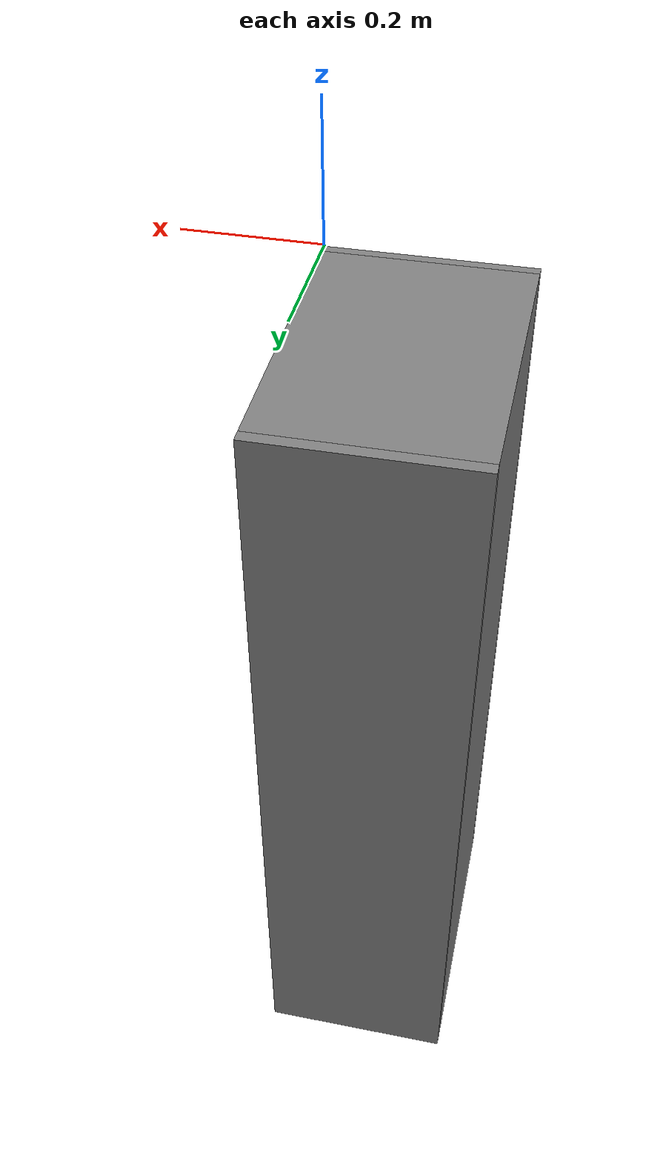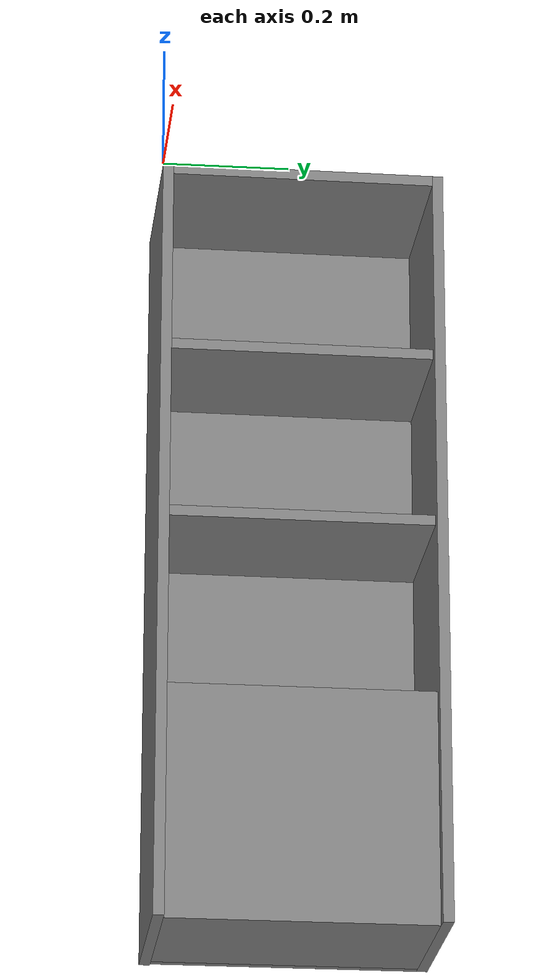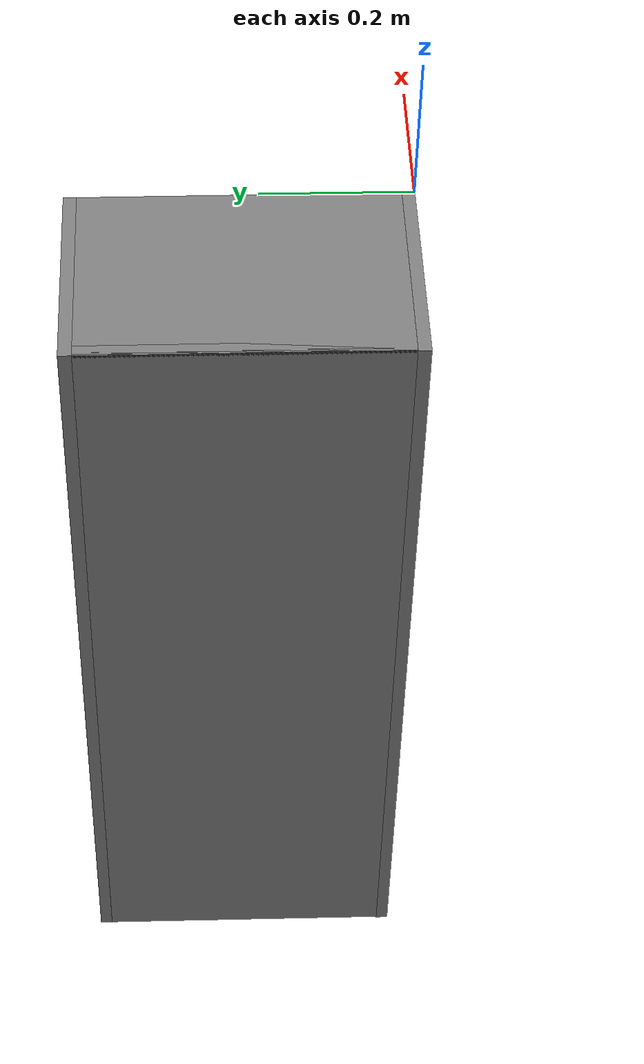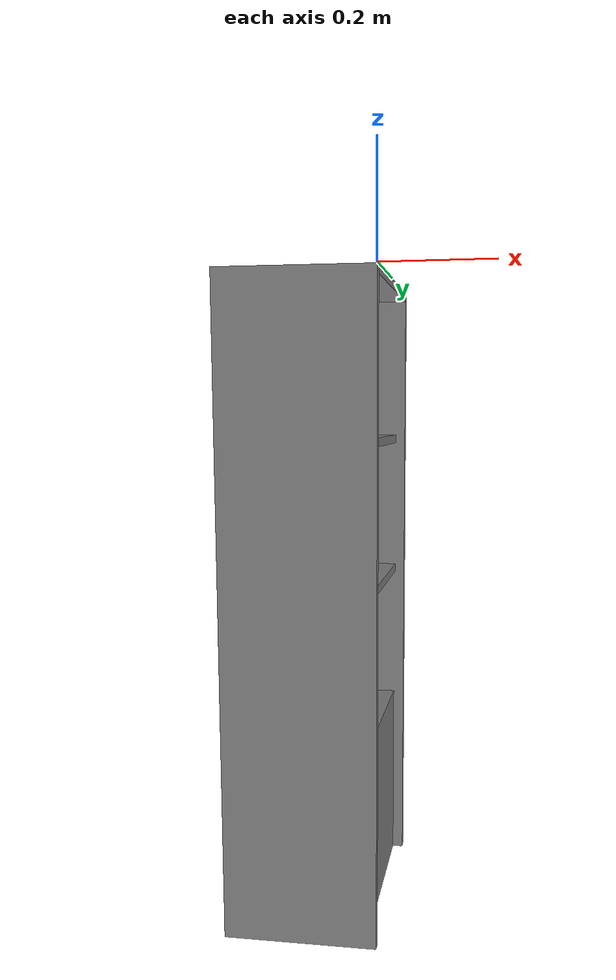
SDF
<?xml version="1.0" ?>
<sdf version="1.4">
    <model name='tvboard'>
      <link name='link'>
        <inertial>
          <mass>50</mass>
          <inertia>
            <ixx>1</ixx>
            <ixy>0</ixy>
            <ixz>0</ixz>
            <iyy>1</iyy>
            <iyz>0</iyz>
            <izz>1</izz>
          </inertia>
        </inertial>
        <visual name='left_board'>
          <pose>-0.145 0.0085 -0.6175 0 0 0</pose>
          <geometry>
            <box>
              <size>0.29 0.017 1.2315</size>
            </box>
          </geometry>
          <material>
            <!-- base_materials/wood -->
            <name>wood</name>
            <ambient>1 1 1 1</ambient>
            <diffuse>0.5 0.5 0.5 1.0</diffuse>
            <specular>0 0 0 1.0</specular>
            <shininess>12.5</shininess>
            <pbr>
              <metal>
                <albedo_map>model://base_materials/wood/textures/light_wood.png</albedo_map>
                <max_anisotropy>16</max_anisotropy>
                <metalness>0</metalness>
              </metal>
            </pbr>
          </material>
        </visual>
        <collision name='collision_left_board'>
          <pose>-0.145 0.0085 -0.6175 0 0 0</pose>
          <geometry>
            <box>
              <size>0.29 0.017 1.2315</size>
            </box>
          </geometry>
          <max_contacts>10</max_contacts>
          <surface>
            <bounce/>
            <friction>
              <ode/>
            </friction>
            <contact>
              <ode/>
            </contact>
          </surface>
        </collision>
        <visual name='right_board'>
          <pose>-0.145 0.4405 -0.61575 0 0 0</pose>
          <geometry>
            <box>
              <size>0.29 0.017 1.2315</size>
            </box>
          </geometry>
          <material>
            <!-- base_materials/wood -->
            <name>wood</name>
            <ambient>1 1 1 1</ambient>
            <diffuse>0.5 0.5 0.5 1.0</diffuse>
            <specular>0 0 0 1.0</specular>
            <shininess>12.5</shininess>
            <pbr>
              <metal>
                <albedo_map>model://base_materials/wood/textures/light_wood.png</albedo_map>
                <max_anisotropy>16</max_anisotropy>
                <metalness>0</metalness>
              </metal>
            </pbr>
          </material>
        </visual>
        <collision name='collision_right_board'>
          <pose>-0.145 0.4405 -0.61575 0 0 0</pose>
          <geometry>
            <box>
              <size>0.29 0.017 1.2315</size>
            </box>
          </geometry>
          <max_contacts>10</max_contacts>
          <surface>
            <bounce/>
            <friction>
              <ode/>
            </friction>
            <contact>
              <ode/>
            </contact>
          </surface>
        </collision>
        <visual name='top_board'>
          <pose>-0.145 0.2245 -0.0085 0 0 0</pose>
          <geometry>
            <box>
              <size>0.29 0.415 0.017</size>
            </box>
          </geometry>
          <material>
            <!-- base_materials/wood -->
            <name>wood</name>
            <ambient>1 1 1 1</ambient>
            <diffuse>0.5 0.5 0.5 1.0</diffuse>
            <specular>0 0 0 1.0</specular>
            <shininess>12.5</shininess>
            <pbr>
              <metal>
                <albedo_map>model://base_materials/wood/textures/light_wood.png</albedo_map>
                <max_anisotropy>16</max_anisotropy>
                <metalness>0</metalness>
              </metal>
            </pbr>
          </material>
        </visual>
        <collision name='collision_top_board'>
          <pose>-0.145 0.2245 -0.0085 0 0 0</pose>
          <geometry>
            <box>
              <size>0.29 0.415 0.017</size>
            </box>
          </geometry>
          <max_contacts>10</max_contacts>
          <surface>
            <bounce/>
            <friction>
              <ode/>
            </friction>
            <contact>
              <ode/>
            </contact>
          </surface>
        </collision>
        <visual name='1st_shelf'>
          <pose>-0.146 0.2245 -0.3035 0 0 0</pose>
          <geometry>
            <box>
              <size>0.254 0.415 0.017</size>
            </box>
          </geometry>
          <material>
            <!-- base_materials/wood -->
            <name>wood</name>
            <ambient>1 1 1 1</ambient>
            <diffuse>0.5 0.5 0.5 1.0</diffuse>
            <specular>0 0 0 1.0</specular>
            <shininess>12.5</shininess>
            <pbr>
              <metal>
                <albedo_map>model://base_materials/wood/textures/light_wood.png</albedo_map>
                <max_anisotropy>16</max_anisotropy>
                <metalness>0</metalness>
              </metal>
            </pbr>
          </material>
        </visual>
        <collision name='collision_1st_shelf'>
          <pose>-0.146 0.2245 -0.3035 0 0 0</pose>
          <geometry>
            <box>
              <size>0.254 0.415 0.017</size>
            </box>
          </geometry>
          <max_contacts>10</max_contacts>
          <surface>
            <bounce/>
            <friction>
              <ode/>
            </friction>
            <contact>
              <ode/>
            </contact>
          </surface>
        </collision>
        <visual name='2nd_shelf'>
          <pose>-0.146 0.2245 -0.5845 0 0 0</pose>
          <geometry>
            <box>
              <size>0.254 0.415 0.017</size>
            </box>
          </geometry>
          <material>
            <!-- base_materials/wood -->
            <name>wood</name>
            <ambient>1 1 1 1</ambient>
            <diffuse>0.5 0.5 0.5 1.0</diffuse>
            <specular>0 0 0 1.0</specular>
            <shininess>12.5</shininess>
            <pbr>
              <metal>
                <albedo_map>model://base_materials/wood/textures/light_wood.png</albedo_map>
                <max_anisotropy>16</max_anisotropy>
                <metalness>0</metalness>
              </metal>
            </pbr>
          </material>
        </visual>
        <collision name='collision_2nd_shelf'>
          <pose>-0.146 0.2245 -0.5845 0 0 0</pose>
          <geometry>
            <box>
              <size>0.254 0.415 0.017</size>
            </box>
          </geometry>
          <max_contacts>10</max_contacts>
          <surface>
            <bounce/>
            <friction>
              <ode/>
            </friction>
            <contact>
              <ode/>
            </contact>
          </surface>
        </collision>
        <visual name='bottom_board'>
          <pose>-0.148 0.2245 -1.04775 0 0 0</pose>
          <geometry>
            <box>
              <size>0.254 0.415 0.3675</size>
            </box>
          </geometry>
          <material>
            <!-- base_materials/wood -->
            <name>wood</name>
            <ambient>1 1 1 1</ambient>
            <diffuse>0.5 0.5 0.5 1.0</diffuse>
            <specular>0 0 0 1.0</specular>
            <shininess>12.5</shininess>
            <pbr>
              <metal>
                <albedo_map>model://base_materials/wood/textures/light_wood.png</albedo_map>
                <max_anisotropy>16</max_anisotropy>
                <metalness>0</metalness>
              </metal>
            </pbr>
          </material>
        </visual>
        <collision name='collision_bottom_board'>
          <pose>-0.148 0.2245 -1.04775 0 0 0</pose>
          <geometry>
            <box>
              <size>0.254 0.415 0.3675</size>
            </box>
          </geometry>
          <max_contacts>10</max_contacts>
          <surface>
            <bounce/>
            <friction>
              <ode/>
            </friction>
            <contact>
              <ode/>
            </contact>
          </surface>
        </collision>
        <visual name='back_board'>
          <pose>-0.2815 0.2245 -0.61575 0 0 0</pose>
          <geometry>
            <box>
              <size>0.017 0.415 1.2315</size>
            </box>
          </geometry>
          <material>
            <!-- base_materials/wood -->
            <name>wood</name>
            <ambient>1 1 1 1</ambient>
            <diffuse>0.5 0.5 0.5 1.0</diffuse>
            <specular>0 0 0 1.0</specular>
            <shininess>12.5</shininess>
            <pbr>
              <metal>
                <albedo_map>model://base_materials/wood/textures/light_wood.png</albedo_map>
                <max_anisotropy>16</max_anisotropy>
                <metalness>0</metalness>
              </metal>
            </pbr>
          </material>
        </visual>
        <collision name='collision_back_board'>
          <pose>-0.2815 0.2245 -0.61575 0 0 0</pose>
          <geometry>
            <box>
              <size>0.017 0.415 1.2315</size>
            </box>
          </geometry>
          <max_contacts>10</max_contacts>
          <surface>
            <bounce/>
            <friction>
              <ode/>
            </friction>
            <contact>
              <ode/>
            </contact>
          </surface>
        </collision>
        <velocity_decay>
          <linear>0</linear>
          <angular>0</angular>
        </velocity_decay>
        <self_collide>0</self_collide>
        <kinematic>0</kinematic>
        <gravity>1</gravity>
      </link>
      <static>1</static>
    </model>
</sdf>
